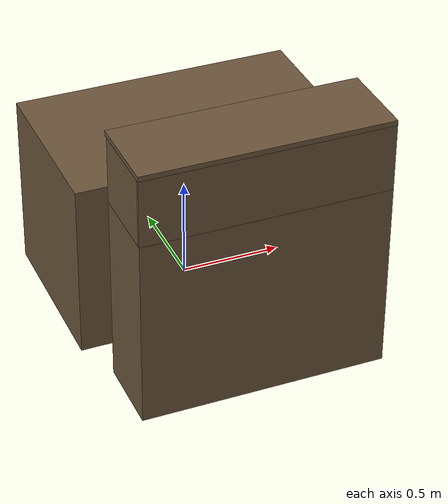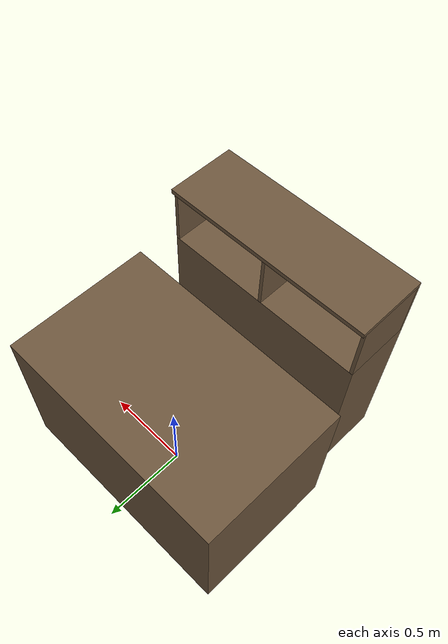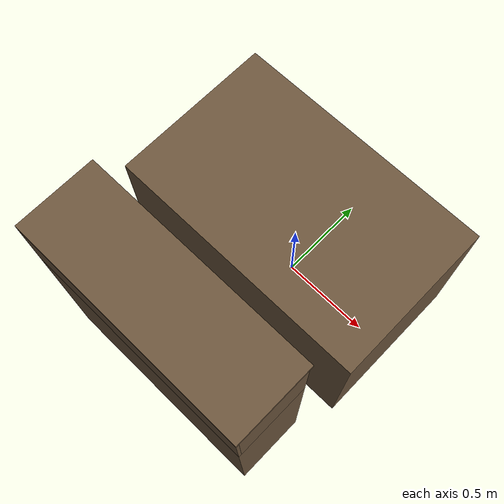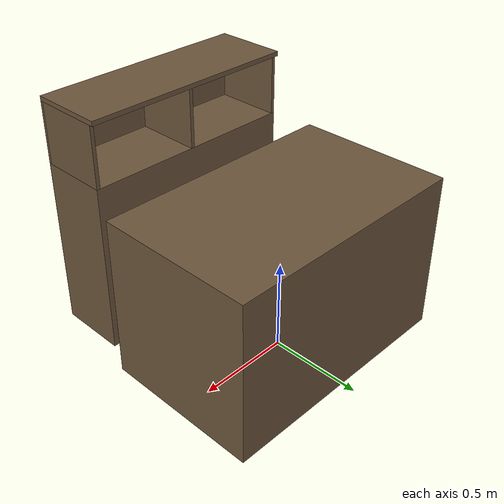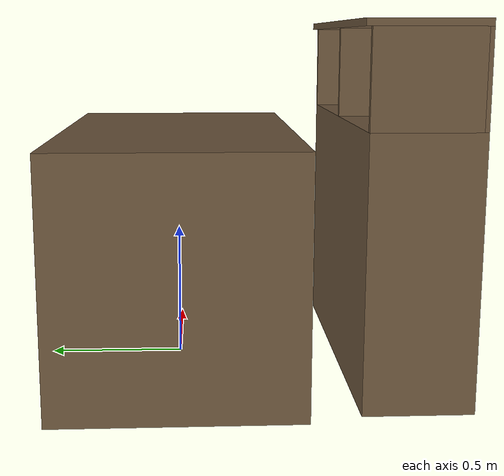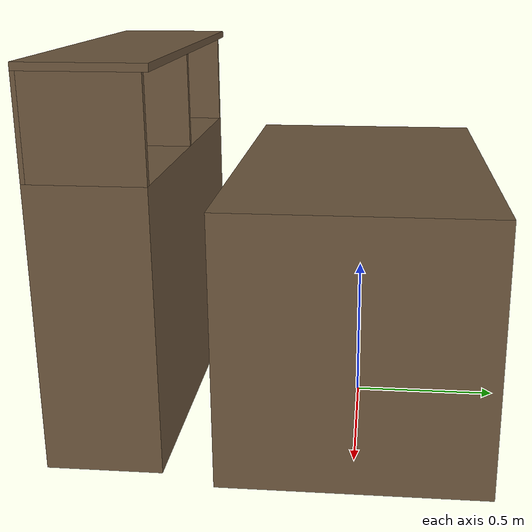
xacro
<?xml version='1.0' encoding='utf-8'?>
<robot xmlns:xacro="http://www.ros.org/wiki/xacro" name="environment">
  <xacro:include filename="$(find agimus_demo_05_pick_and_place)/urdf/support.urdf.xacro" />

  <xacro:support />
  <joint name="support_to_box" type="fixed">
    <parent link="support_link" />
    <child link="big_box_link" />
    <origin xyz="0.06 -0.2 0.761" />
  </joint>

  <xacro:include filename="$(find agimus_demo_05_pick_and_place)/urdf/obstacles.xacro"/>

</robot>

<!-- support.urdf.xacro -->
<robot xmlns:xacro="http://www.ros.org/wiki/xacro">
  <xacro:macro name="support" params="">
    <link name="support_link">
        <inertial>
            <origin xyz="0.0 0.0 0.0" rpy="0 0 0" />
            <mass value="1" />
            <inertia ixx="0.001" ixy="0.0" ixz="0.0" iyy="0.001" iyz="0.0" izz="0.001" />
        </inertial>
    </link>
    <link name="table_desk">
    <inertial>
        <origin xyz="0.0 0.0 0.0" rpy="0 0 0" />
        <mass value="1" />
        <inertia ixx="0.001" ixy="0.0" ixz="0.0" iyy="0.001" iyz="0.0" izz="0.001" />
    </inertial>
    <visual>
        <origin xyz="0 0 -0.44" rpy="0 0 0" />
        <geometry>
            <box size="1.384 0.854 0.88" />
        </geometry>
        <material name="brown">
            <color rgba="0.43 0.34 0.24 0.9" />
        </material>
    </visual>
    <collision>
        <origin xyz="0 0 -0.44" rpy="0 0 0" />
        <geometry>
            <box size="1.384 0.854 0.88" />
        </geometry>
    </collision>
    </link>

    <joint name="table_main_link" type="fixed">
        <origin rpy="0.0 -0.0 0.0" xyz="0.0 0.0 0.88" />
        <parent link="support_link" />
        <child link="table_desk" />
    </joint>
    <link name="shelf_top_desk">
        <inertial>
            <origin xyz="0.0 0.0 0.0" rpy="0 0 0" />
            <mass value="1" />
            <inertia ixx="0.001" ixy="0.0" ixz="0.0" iyy="0.001" iyz="0.0" izz="0.001" />
        </inertial>
        <visual>
            <origin xyz="-0.01 0 -0.0125" rpy="0 0 0" />
            <geometry>
                <box size="0.4 1.2 0.025" />
            </geometry>
            <material name="brown">
            <color rgba="0.43 0.34 0.24 0.9" />
            </material>
        </visual>
        <collision>
        <origin xyz="-0.01 0 -0.0125" rpy="0 0 0" />
            <geometry>
                <box size="0.4 1.2 0.025" />
            </geometry>
        </collision>
    </link>
    <link name="shelf_box">
        <inertial>
            <origin xyz="0.0 0.0 0.0" rpy="0 0 0" />
            <mass value="1" />
            <inertia ixx="0.001" ixy="0.0" ixz="0.0" iyy="0.001" iyz="0.0" izz="0.001" />
        </inertial>
        <visual>
            <origin xyz="0 0 -0.8275" rpy="0 0 0" />
            <geometry>
                <box size="0.38 1.2 0.945" />
            </geometry>
            <material name="brown">
            <color rgba="0.43 0.34 0.24 0.9" />
            </material>
        </visual>
        <collision>
            <origin xyz="0 0 -0.8275" rpy="0 0 0" />
            <geometry>
                <box size="0.38 1.2 0.945" />
            </geometry>
        </collision>
    </link>
    <link name="shelf_wall_left">
        <inertial>
            <origin xyz="0.0 0.0 0.0" rpy="0 0 0" />
            <mass value="1" />
            <inertia ixx="0.001" ixy="0.0" ixz="0.0" iyy="0.001" iyz="0.0" izz="0.001" />
        </inertial>
        <visual>
            <origin xyz="-0.0075 -0.59 -0.19" rpy="0 0 0" />
            <geometry>
                <box size="0.365 0.02 0.33" />
            </geometry>
            <material name="brown">
            <color rgba="0.43 0.34 0.24 0.9" />
            </material>
        </visual>
        <collision>
            <origin xyz="-0.0075 -0.59 -0.19" rpy="0 0 0" />
            <geometry>
                <box size="0.365 0.02 0.33" />
            </geometry>
        </collision>
    </link>
    <link name="shelf_wall_center">
        <inertial>
            <origin xyz="0.0 0.0 0.0" rpy="0 0 0" />
            <mass value="1" />
            <inertia ixx="0.001" ixy="0.0" ixz="0.0" iyy="0.001" iyz="0.0" izz="0.001" />
        </inertial>
        <visual>
            <origin xyz="-0.0075 0.0 -0.19" rpy="0 0 0" />
            <geometry>
                <box size="0.365 0.02 0.33" />
            </geometry>
            <material name="brown">
            <color rgba="0.43 0.34 0.24 0.9" />
            </material>
        </visual>
        <collision>
            <origin xyz="-0.0075 0.0 -0.19" rpy="0 0 0" />
            <geometry>
                <box size="0.365 0.02 0.33" />
            </geometry>
        </collision>
    </link>
    <link name="shelf_wall_right">
        <inertial>
            <origin xyz="0.0 0.0 0.0" rpy="0 0 0" />
            <mass value="1" />
            <inertia ixx="0.001" ixy="0.0" ixz="0.0" iyy="0.001" iyz="0.0" izz="0.001" />
        </inertial>
        <visual>
            <origin xyz="-0.0075 0.59 -0.19" rpy="0 0 0" />
            <geometry>
                <box size="0.365 0.02 0.33" />
            </geometry>
            <material name="brown">
            <color rgba="0.43 0.34 0.24 0.9" />
            </material>
        </visual>
        <collision>
            <origin xyz="-0.0075 0.59 -0.19" rpy="0 0 0" />
            <geometry>
                <box size="0.365 0.02 0.33" />
            </geometry>
        </collision>
    </link>
    <link name="shelf_wall_back">
        <inertial>
            <origin xyz="0.0 0.0 0.0" rpy="0 0 0" />
            <mass value="1" />
            <inertia ixx="0.001" ixy="0.0" ixz="0.0" iyy="0.001" iyz="0.0" izz="0.001" />
        </inertial>
        <visual>
            <origin xyz="0.1825 0 -0.19" rpy="0 0 0" />
            <geometry>
                <box size="0.015 1.2 0.33" />
            </geometry>
            <material name="brown">
            <color rgba="0.43 0.34 0.24 0.9" />
            </material>
        </visual>
        <collision>
            <origin xyz="0.1825 0 -0.19" rpy="0 0 0" />
            <geometry>
                <box size="0.015 1.2 0.33" />
            </geometry>
        </collision>
    </link>

    <joint name="shelf_main_link" type="fixed">
        <origin rpy="0.0 0.0 -1.5707963267948966" xyz="0.0 -0.80 1.28" />
        <parent link="support_link" />
        <child link="shelf_top_desk" />
    </joint>
    <joint name="shelf_box_connect" type="fixed">
        <origin rpy="0 0 0" xyz="0 0 0" />
        <parent link="shelf_top_desk" />
        <child link="shelf_box" />
    </joint>
    <joint name="shelf_wall_L_connect" type="fixed">
        <origin rpy="0 0 0" xyz="0 0 0" />
        <parent link="shelf_top_desk" />
        <child link="shelf_wall_left" />
    </joint>
    <joint name="shelf_wall_C_connect" type="fixed">
        <origin rpy="0 0 0" xyz="0 0 0" />
        <parent link="shelf_top_desk" />
        <child link="shelf_wall_center" />
    </joint>
    <joint name="shelf_wall_R_connect" type="fixed">
        <origin rpy="0 0 0" xyz="0 0 0" />
        <parent link="shelf_top_desk" />
        <child link="shelf_wall_right" />
    </joint>
    <joint name="shelf_wall_B_connect" type="fixed">
        <origin rpy="0 0 0" xyz="0 0 0" />
        <parent link="shelf_top_desk" />
        <child link="shelf_wall_back" />
    </joint>
    <link name="robot_attachment_link" />
    <joint name="support_joint" type="fixed">
      <origin xyz="0.422 0.0 .92" rpy="0 0 ${pi}" />
      <parent link="support_link" />
      <child link="robot_attachment_link" />
    </joint>
  </xacro:macro>
</robot>

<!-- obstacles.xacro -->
<robot xmlns:xacro="http://www.ros.org/wiki/xacro" name="obstacles">
    <xacro:include filename="$(find agimus_franka_description)/robots/common/utils.xacro" />
    <material name="red">
        <color rgba=".9 .1 .1 1" />
    </material>
    <link name="big_box_link">
        <inertial>
          <origin xyz="0 0 0" rpy="0 0 0" />
          <mass value="0.6" />
          <inertia ixx="0.001" ixy="0.0" ixz="0.0"
                   iyy="0.001" iyz="0.0"
                   izz="0.001" />
        </inertial>

        <!-- New target outer size: 0.40 x 0.305, bottom thickness 0.001 -->
        <visual>
          <origin xyz="0 0 0.0155" rpy="0 0 0" />
          <geometry>
            <box size="0.40 0.305 0.001" />
          </geometry>
          <material name="red" />
        </visual>
        <collision>
          <origin xyz="0 0 0.0155" rpy="0 0 0" />
          <geometry>
            <box size="0.40 0.305 0.001" />
          </geometry>
        </collision>

        <!-- Walls: thickness 0.001, height 0.093 -->
        <!-- Wall center z = bottom_z + bottom_thickness/2 + wall_height/2
             = 0.0155 + 0.0005 + 0.0465 = 0.0625 -->

        <!-- +Y wall -->
        <visual>
          <origin xyz="0 0.152 0.0625" />
          <geometry>
            <box size="0.398 0.001 0.093" />
          </geometry>
          <material name="red" />
        </visual>
        <collision>
          <origin xyz="0 0.152 0.0625" />
          <geometry>
            <box size="0.398 0.001 0.093" />
          </geometry>
        </collision>

        <!-- -Y wall -->
        <visual>
          <origin xyz="0 -0.152 0.0625" />
          <geometry>
            <box size="0.398 0.001 0.093" />
          </geometry>
          <material name="red" />
        </visual>
        <collision>
          <origin xyz="0 -0.152 0.0625" />
          <geometry>
            <box size="0.398 0.001 0.093" />
          </geometry>
        </collision>

        <!-- +X wall -->
        <visual>
          <origin xyz="0.1995 0 0.0625" />
          <geometry>
            <box size="0.001 0.303 0.093" />
          </geometry>
          <material name="red" />
        </visual>
        <collision>
          <origin xyz="0.1995 0 0.0625" />
          <geometry>
            <box size="0.001 0.303 0.093" />
          </geometry>
        </collision>

        <!-- -X wall -->
        <visual>
          <origin xyz="-0.1995 0 0.0625" />
          <geometry>
            <box size="0.001 0.303 0.093" />
          </geometry>
          <material name="red" />
        </visual>
        <collision>
          <origin xyz="-0.1995 0 0.0625" />
          <geometry>
            <box size="0.001 0.303 0.093" />
          </geometry>
        </collision>
      </link>

    <joint name="box_to_obstacle" type="fixed">
        <parent link="big_box_link" />
        <child link="obstacle1" />
        <origin xyz="0.1 0 0.5" rpy="0 0 0 " />
    </joint>
    <link name="obstacle1">
        <xacro:collision_capsule xyz="0.535 0 0.43" direction="x" radius="0.1"
            length="0.3" />
    </link>
</robot>

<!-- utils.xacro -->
<robot xmlns:xacro="http://www.ros.org/wiki/xacro">

  <!-- Load inertial properties. Property is implicitly passed to macros. -->
  <xacro:property name="inertial_config" value="$(find franka_description)/robots/common/inertial.yaml"/>
  <xacro:property name="inertial" value="${xacro.load_yaml(inertial_config)}"/>

  <!-- name:     Name of the robot link (without prefix)              -->
  <!-- inertial: Dictionary of inertia properties (see inertial.yaml) -->
  <xacro:macro name="inertial_props" params="name inertial:=^">
      <xacro:unless value="${name in inertial}">${xacro.warning('No inertia properties defined for: ' + name)}</xacro:unless>
      <xacro:if value="${name in inertial}">
        <!-- Access inertia properties of link 'name' -->
        <xacro:property name="inertial" value="${inertial[name]}" lazy_eval="false" />
        <inertial>
          <origin rpy="${inertial.origin.rpy}" xyz="${inertial.origin.xyz}" />
          <mass value="${inertial.mass}" />
          <xacro:property name="I" value="${inertial.inertia}" />
          <inertia ixx="${I.xx}" ixy="${I.xy}" ixz="${I.xz}" iyy="${I.yy}" iyz="${I.yz}" izz="${I.zz}" />
        </inertial>
      </xacro:if>
  </xacro:macro>

  <!-- Macro to add a single link, both with                      -->
  <!--  * detailed meshes for environmental collision checking    -->
  <!--  * and coarse geometry models for self-collision checking  -->
  <!--    (only if 'gazebo' param is set)                         -->
  <!-- name:  Name of the robot link (without prefix)             -->
  <!-- rpy:   Rotation of the *_sc link relative to parent [rad]  -->
  <xacro:macro name="link_with_sc" params="name prefix=${arm_id}_ rpy:='0 0 0' **self_collision_geometries gazebo:=false">
    <!-- sub-link defining detailed meshes for collision with environment -->
    <link name="${prefix}${name}">
      <visual>
        <geometry>
          <mesh filename="package://${description_pkg}/meshes/robot_arms/fer/visual/${name}.dae" />
        </geometry>
      </visual>
      <collision>
        <geometry>
          <mesh filename="package://franka_description/meshes/robot_arms/fer/collision/${name}.stl" />
        </geometry>
      </collision>
      <xacro:if value="${gazebo}">
        <xacro:inertial_props name="${name}" />
      </xacro:if>
    </link>
    <!-- sub-link defining coarse geometries of real robot's internal self-collision -->
    <link name="${prefix}${name}_sc">
      <xacro:unless value="${gazebo}">
        <xacro:insert_block name="self_collision_geometries" />
      </xacro:unless>
    </link>
    <!-- fixed joint between both sub-links -->
    <joint name="${prefix}${name}_sc_joint" type="fixed">
      <origin rpy="${rpy}" />
      <parent link="${prefix}${name}" />
      <child link="${prefix}${name}_sc" />
    </joint>
  </xacro:macro>

  <!-- with two spheres at its caps. The capsule will always be    -->
  <!-- aligned with the axis of 'direction' you pass along.        -->
  <!-- radius: Radii of both the cylinder and both spheres [m]     -->
  <!-- length: Length of the cylinder/distance between the centers -->
  <!--         of the spheres. NOT overall length of capsule!      -->
  <!-- xyz:    Position of the center of the capsule/cylinder      -->
  <!-- direction: One of { x, y, z, -x, -y, -z }                   -->
  <xacro:macro name="collision_capsule" params="radius length xyz:='0 0 0' direction:='z'">
    <xacro:property name="r" value="${pi/2.0 if 'y' in direction else 0}" />
    <xacro:property name="p" value="${pi/2.0 if 'x' in direction else 0}" />
    <xacro:property name="y" value="0" />
    <xacro:property name="x" value="${xyz.split(' ')[0]}" />
    <xacro:property name="y" value="${xyz.split(' ')[1]}" />
    <xacro:property name="z" value="${xyz.split(' ')[2]}" />
    <!-- Sphere center offsets from center of cylinder -->
    <xacro:property name="sx" value="${length / 2.0 if 'x' in direction else 0}" />
    <xacro:property name="sy" value="${length / 2.0 if 'y' in direction else 0}" />
    <xacro:property name="sz" value="${length / 2.0 if 'z' in direction else 0}" />

    <collision>
      <origin xyz="${x} ${y} ${z}" rpy="${r} ${p} ${y}"/>
      <geometry>
        <cylinder radius="${radius}" length="${length}" />
      </geometry>
    </collision>
    <collision>
      <origin xyz="${x+sx} ${y+sy} ${z+sz}" />
      <geometry>
        <sphere radius="${radius}" />
      </geometry>
    </collision>
    <collision>
      <origin xyz="${x-sx} ${y-sy} ${z-sz}" />
      <geometry>
        <sphere radius="${radius}" />
      </geometry>
    </collision>
  </xacro:macro>

  <!-- Adds the required tags to simulate one joint in gazebo     -->
  <!-- joint - Name of the panda joint to simulate                -->
  <!-- transmission - type of the transmission of the joint       -->
  <xacro:macro name="gazebo-joint" params="joint transmission:=hardware_interface/EffortJointInterface">
    <gazebo reference="${joint}">
      <!-- Needed for ODE to output external wrenches on joints -->
      <provideFeedback>true</provideFeedback>
    </gazebo>

    <transmission name="${joint}_transmission">
      <type>transmission_interface/SimpleTransmission</type>
      <joint name="${joint}">
        <hardwareInterface>${transmission}</hardwareInterface>
      </joint>
      <actuator name="${joint}_motor">
        <hardwareInterface>${transmission}</hardwareInterface>
      </actuator>
    </transmission>
  </xacro:macro>

  <xacro:macro name="gazebo-friction" params="link mu">
    <gazebo reference="${link}">
      <collision>
        <max_contacts>10</max_contacts>
        <surface>
          <contact>
            <ode>
              <!-- These two parameter need application specific tuning. -->
              <!-- Usually you want no "snap out" velocity and a generous -->
              <!-- penetration depth to keep the grasping stable -->
              <max_vel>0</max_vel>
              <min_depth>0.001</min_depth>
            </ode>
          </contact>
          <friction>
            <ode>
              <mu>${mu}</mu>
              <mu2>${mu}</mu2>
            </ode>
          </friction>
          <bounce/>
        </surface>
      </collision>
    </gazebo>
  </xacro:macro>

  <!-- Adds the required tags to provide a `FrankaStateInterface` -->
  <!-- when simulating with franka_hw_sim plugin                  -->
  <!-- arm_id - Arm ID of the panda to simulate (default 'panda') -->
  <xacro:macro name="transmission-franka-state" params="arm_id:=panda">
    <transmission name="${arm_id}_franka_state">
      <type>franka_hw/FrankaStateInterface</type>
      <joint name="${arm_id}_joint1"><hardwareInterface>franka_hw/FrankaStateInterface</hardwareInterface></joint>
      <joint name="${arm_id}_joint2"><hardwareInterface>franka_hw/FrankaStateInterface</hardwareInterface></joint>
      <joint name="${arm_id}_joint3"><hardwareInterface>franka_hw/FrankaStateInterface</hardwareInterface></joint>
      <joint name="${arm_id}_joint4"><hardwareInterface>franka_hw/FrankaStateInterface</hardwareInterface></joint>
      <joint name="${arm_id}_joint5"><hardwareInterface>franka_hw/FrankaStateInterface</hardwareInterface></joint>
      <joint name="${arm_id}_joint6"><hardwareInterface>franka_hw/FrankaStateInterface</hardwareInterface></joint>
      <joint name="${arm_id}_joint7"><hardwareInterface>franka_hw/FrankaStateInterface</hardwareInterface></joint>

      <actuator name="${arm_id}_motor1"><hardwareInterface>franka_hw/FrankaStateInterface</hardwareInterface></actuator>
      <actuator name="${arm_id}_motor2"><hardwareInterface>franka_hw/FrankaStateInterface</hardwareInterface></actuator>
      <actuator name="${arm_id}_motor3"><hardwareInterface>franka_hw/FrankaStateInterface</hardwareInterface></actuator>
      <actuator name="${arm_id}_motor4"><hardwareInterface>franka_hw/FrankaStateInterface</hardwareInterface></actuator>
      <actuator name="${arm_id}_motor5"><hardwareInterface>franka_hw/FrankaStateInterface</hardwareInterface></actuator>
      <actuator name="${arm_id}_motor6"><hardwareInterface>franka_hw/FrankaStateInterface</hardwareInterface></actuator>
      <actuator name="${arm_id}_motor7"><hardwareInterface>franka_hw/FrankaStateInterface</hardwareInterface></actuator>
    </transmission>
  </xacro:macro>

  <!-- Adds the required tags to provide a `FrankaModelInterface`   -->
  <!-- when simulating with franka_hw_sim plugin                    -->
  <!-- arm_id - Arm ID of the panda to simulate (default 'panda')   -->
  <!-- root   - Joint name of the base of the robot                 -->
  <!-- tip    - Joint name of the tip of the robot (flange or hand) -->
  <xacro:macro name="transmission-franka-model" params="arm_id:=panda root:=panda_joint1 tip:=panda_joint7">
    <transmission name="${arm_id}_franka_model">
      <type>franka_hw/FrankaModelInterface</type>
      <joint name="${root}">
        <role>root</role>
        <hardwareInterface>franka_hw/FrankaModelInterface</hardwareInterface>
      </joint>
      <joint name="${tip}">
        <role>tip</role>
        <hardwareInterface>franka_hw/FrankaModelInterface</hardwareInterface>
      </joint>

      <actuator name="${root}_motor_root"><hardwareInterface>franka_hw/FrankaModelInterface</hardwareInterface></actuator>
      <actuator name="${tip}_motor_tip"  ><hardwareInterface>franka_hw/FrankaModelInterface</hardwareInterface></actuator>
    </transmission>
  </xacro:macro>

  <xacro:macro name="inertia-cylinder" params="mass radius h">
    <inertial>
      <mass value="${mass}" />
      <inertia ixx="${1./12 * mass * (3 * radius**2 + h**2)}" ixy = "0" ixz = "0"
               iyy="${1./12 * mass * (3 * radius**2 + h**2)}" iyz = "0"
               izz="${1./2  * mass * radius**2}" />
    </inertial>
  </xacro:macro>

  <!-- of joint limits                                                           -->
  <!-- config - YAML struct defining joint limits (e.g. panda/joint_limits.yaml) -->
  <!-- name   - Name of the joint for which to add limits to                     -->
  <xacro:macro name="franka-limits" params="config name">
      <xacro:property name="limits" value="${config[name]['limit']}" lazy_eval="false" />
      <limit lower="${limits.lower}"
             upper="${limits.upper}"
             effort="${limits.effort}"
             velocity="${limits.velocity}" />
      <safety_controller k_position="100.0"
                         k_velocity="40.0"
                         soft_lower_limit="${limits.lower}"
                         soft_upper_limit="${limits.upper}" />
  </xacro:macro>

</robot>
